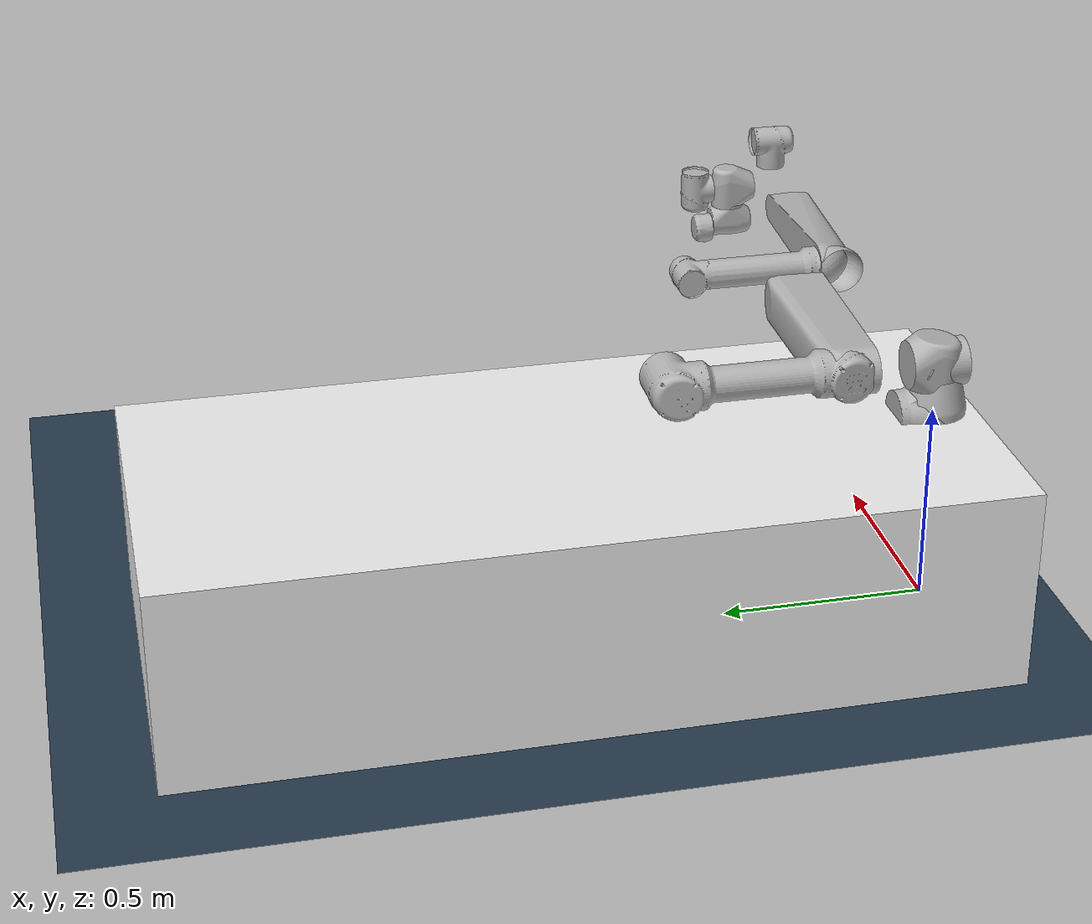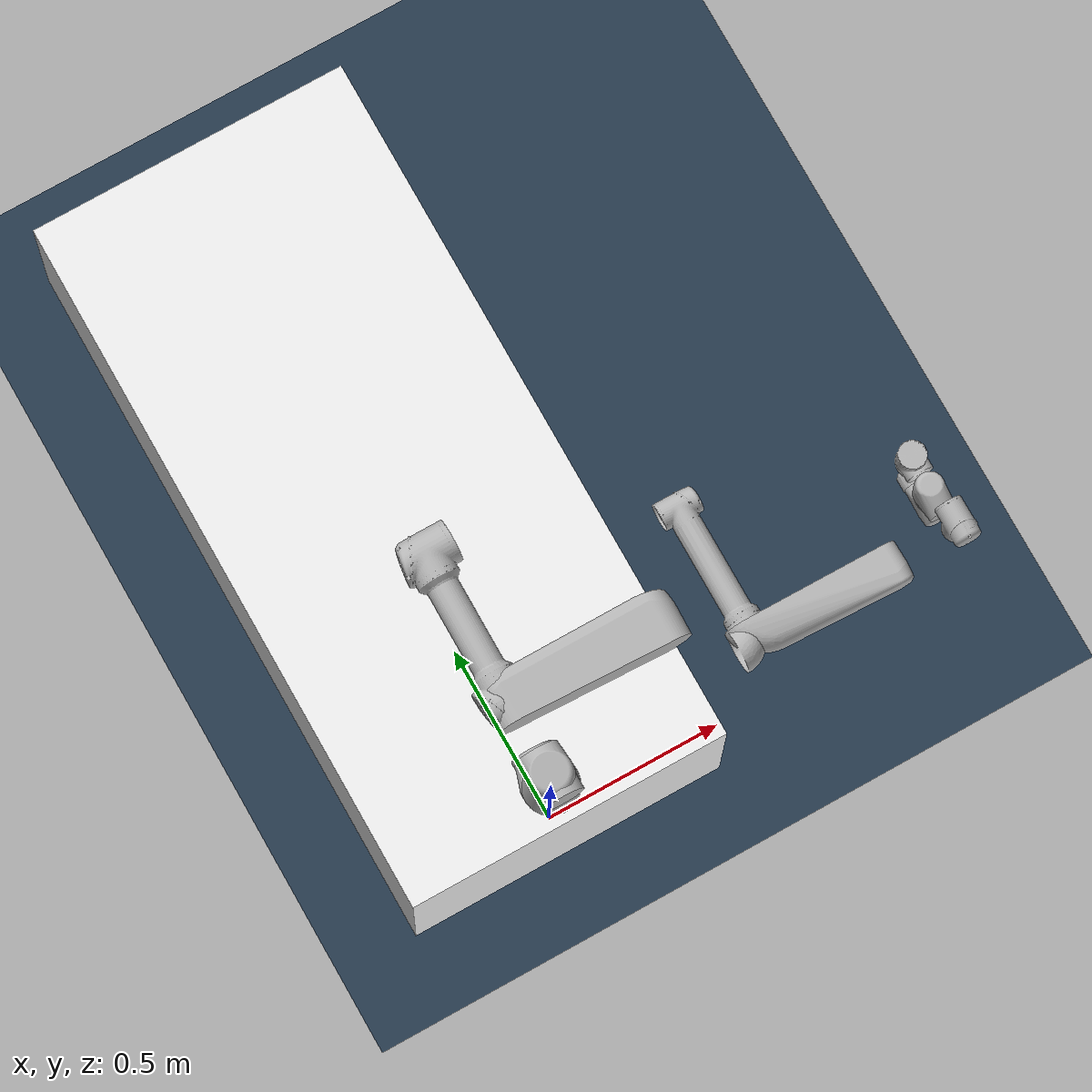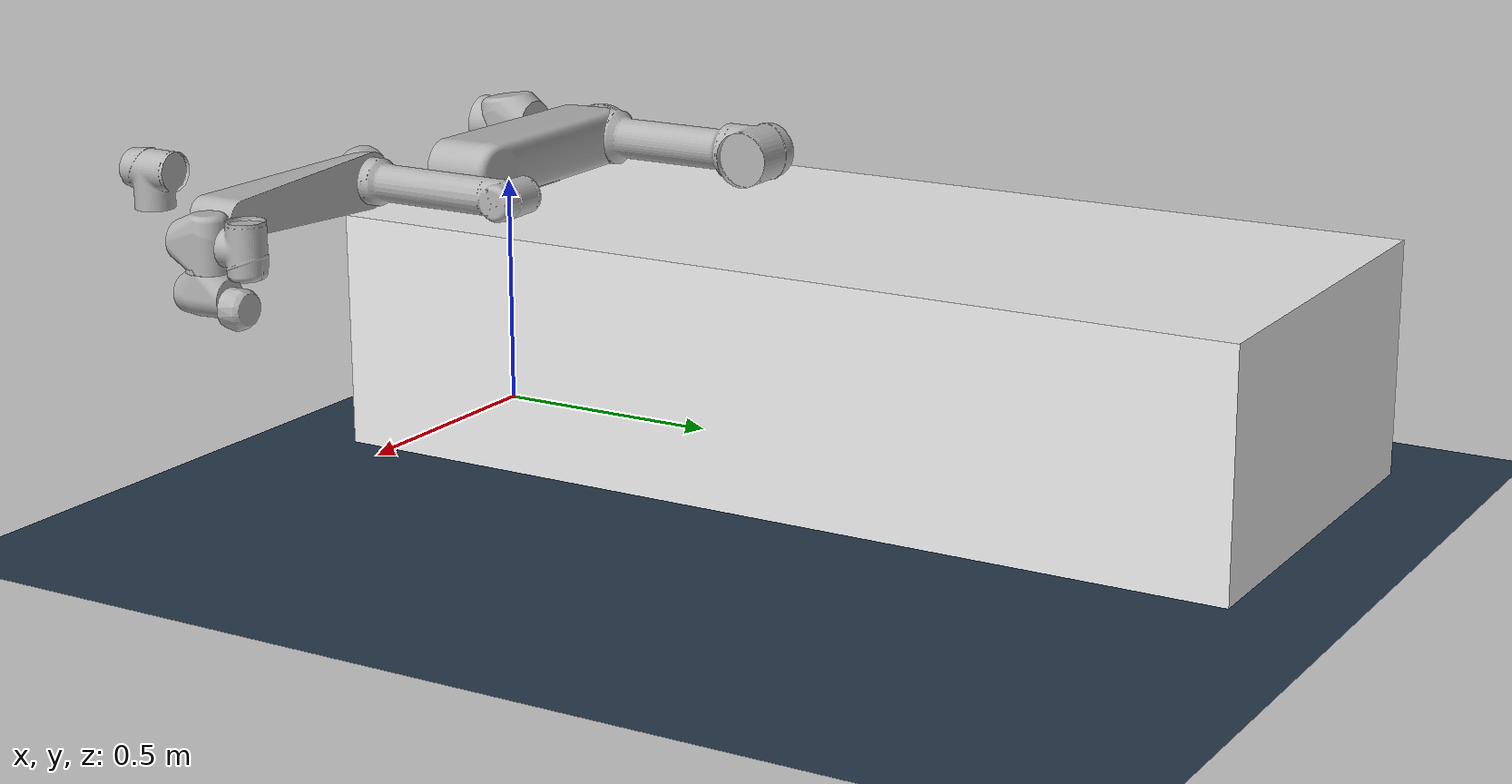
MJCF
<mujoco model="ur10">
    <compiler angle="radian" meshdir="meshes/" coordinate="local" inertiafromgeom='auto' texturedir="textures"/>
    <option timestep="0.01" apirate="200" iterations="20" noslip_iterations="20" tolerance="1e-10" impratio="10"
			gravity="0 0 -9.81" solver="PGS" cone="elliptic" />
    <size njmax="1500" nconmax="500" nstack="5000000" />
    <visual>
        <map fogstart="3" fogend="5" force="0.1" znear="0.1"/>
        <quality shadowsize="4096" offsamples="8" />
        <global offwidth="3024" offheight="1680"/>
    </visual>
    <asset>
        <texture builtin="checker" height="512" name="texplane" rgb1=".2 .3 .4" rgb2=".1 0.15 0.2" type="2d" width="512"/>
        <material name="floorplane" reflectance="0.3" texrepeat="1 1" texture="texplane" texuniform="true"/>
        <material name="table_mat" specular="0" shininess="0.5" reflectance="0" rgba="0.93 0.93 0.93 1"/>
    </asset>
    <asset>
        <mesh name="platform" file="platform.stl" />
        <mesh name="base" file="base.stl" />
        <mesh name="shoulder" file="shoulder.stl" />
        <mesh name="upperarm" file="upperarm.stl" />
        <mesh name="forearm" file="forearm.stl" />
        <mesh name="wrist1" file="wrist1.stl" />
        <mesh name="wrist2" file="wrist2.stl" />
        <mesh name="wrist3" file="wrist3.stl" />
        <mesh name="base_vis" file="base_vis.stl" />
        <mesh name="shoulder_vis" file="shoulder_vis.stl" />
        <mesh name="upperarm_vis" file="upperarm_vis.stl" />
        <mesh name="forearm_vis" file="forearm_vis.stl" />
        <mesh name="wrist1_vis" file="wrist1_vis.stl" />
        <mesh name="wrist2_vis" file="wrist2_vis.stl" />
        <mesh name="wrist3_vis" file="wrist3_vis.stl" />
    </asset>
    <default>
        <default class="ur10">
            <joint pos="0 0 0" axis="0 0 1" limited="true"/>
            <position forcelimited="true" ctrllimited="true"/>
            <default class="ur10_vis">
                <geom contype="0" conaffinity="0" group="1" type="mesh" rgba=".7 .7 .7 1" mass="0"/>
            </default>
            <default class="ur10_col">
                <geom contype="1" conaffinity="1" group="2" type="mesh" rgba=".7 .7 .7 1"/>
            </default>
        </default>
    </default>
    <worldbody>
        <geom name="floor" pos="0. 0. 0" size="3 3 .125" type="plane" condim="4" material="floorplane" contype="1" conaffinity="1"></geom>
		<light directional="true" diffuse='1.0 1.0 1.0' pos="0 0 3" dir="0 0 -1"/>
        <body name="table0" pos="0 0.9 0.25">
            <geom size="0.45 1 0.25" type="box" condim="3" name="table0" material="table_mat" mass="2000" friction="0.1 0.005 0.0001"/>
        </body>
        <body name="base" pos="0 0 0.5">
            <geom name="base" class="ur10_vis" type="mesh" contype="0" conaffinity="0" group="1" rgba="0.7 0.7 0.7 1" mesh="base_vis" />
            <geom class="ur10_col" mesh="base"/>
            <body name="shoulder_link" pos="0 0 0.1273">
                <inertial pos="0 0 0" mass="7.778" diaginertia="0.0314743 0.0314743 0.0218756" />
                <joint name="shoulder_pan_joint" pos="0 0 0" axis="0 0 1" limited="true" range="-6.28319 6.28319" damping="300"/>
                <geom name="shoulder" type="mesh" contype="0" conaffinity="0" group="1" rgba="0.7 0.7 0.7 1" mesh="shoulder_vis" />
                <geom class="ur10_col" mesh="shoulder"/>
                <body name="upper_arm_link" pos="0 0.220941 0" quat="0.707107 0 0.707107 0" euler="0 0 0">
                    <inertial pos="0 -0.045 0.306" mass="12.93" diaginertia="0.421754 0.421754 0.0363656" />
                    <joint name="shoulder_lift_joint" pos="0 0 0" axis="0 1 0" limited="true" range="-6.28319 6.28319" damping="300"/>
                    <geom name="upperarm" type="mesh" contype="0" conaffinity="0" group="1" rgba="0.7 0.7 0.7 1" mesh="upperarm_vis" />
                    <geom class="ur10_col" mesh="upperarm"/>
                    <body name="forearm_link" pos="0 -0.1719 0.612">
                        <inertial pos="0 0 0.28615" mass="3.87" diaginertia="0.11107 0.11107 0.0108844" />
                        <joint name="elbow_joint" pos="0 0 0" axis="0 1 0" limited="true" range="-3.14159 3.14159" damping="300"/>
                        <geom name="forearm" type="mesh" contype="0" conaffinity="0" group="1" rgba="0.7 0.7 0.7 1" mesh="forearm_vis" />
                        <geom class="ur10_col" mesh="forearm"/>
                        <body name="wrist_1_link" pos="0 0 0.5723" quat="0.707107 0 0.707107 0" euler="0 0 0">
                            <inertial pos="0 0.1149 0" quat="0.5 0.5 -0.5 0.5" mass="1.96" diaginertia="0.0055125 0.00510825 0.00510825" />
                            <joint name="wrist_1_joint" pos="0 0 0" axis="0 1 0" limited="true" range="-6.28319 6.28319" damping="20"/>
                            <geom name="wrist1" type="mesh" contype="0" conaffinity="0" group="1" rgba="0.7 0.7 0.7 1" mesh="wrist1_vis" />
                            <geom class="ur10_col" mesh="wrist1"/>
                            <body name="wrist_2_link" pos="0 0.1149 0">
                                <inertial pos="0 0 0.1157" quat="0.5 0.5 -0.5 0.5" mass="1.96" diaginertia="0.0055125 0.00510825 0.00510825" />
                                <joint name="wrist_2_joint" pos="0 0 0" axis="0 0 1" limited="true" range="-6.28319 6.28319" damping="20"/>
                                <geom name="wrist2" type="mesh" contype="0" conaffinity="0" group="1" rgba="0.7 0.7 0.7 1" mesh="wrist2_vis" />
                                <geom class="ur10_col" mesh="wrist2"/>
                                <body name="wrist_3_link" pos="0 0 0.1157">
                                    <inertial pos="0 0.0769759 0" quat="0.707107 0 0 0.707107" mass="0.203" diaginertia="0.000204542 0.000117966 0.000117966" />
                                    <joint name="wrist_3_joint" pos="0 0 0" axis="0 1 0" limited="true" range="-6.28319 6.28319" damping="20"/>
                                    <geom name="wrist3" type="mesh" contype="0" conaffinity="0" group="1" rgba="0.7 0.7 0.7 1" mesh="wrist3_vis" />
                                    <geom class="ur10_col" mesh="wrist3"/>
                                    <geom size="0.005 0.005 0.005" pos="0 0.0822 0" quat="0.707107 0 0 0.707107" type="box" />
                                </body>
                            </body>
                        </body>
                    </body>
                </body>
            </body>
        </body>
    </worldbody>

    <actuator>
        <position name="shoulder_pan_joint" class="ur10" ctrlrange="-6.28319 6.28319" forcerange="-330 330" joint="shoulder_pan_joint" kp="1000"/>
        <position name="shoulder_lift_joint" class="ur10" ctrlrange="-6.28319 6.28319" forcerange="-330 330" joint="shoulder_lift_joint" kp="3000"/>
        <position name="elbow_joint" class="ur10" ctrlrange="-3.14159 3.14159" forcerange="-150 150" joint="elbow_joint" kp="1000"/>
        <position name="wrist_1_joint" class="ur10" ctrlrange="-6.28319 6.28319" forcerange="-56 56" joint="wrist_1_joint" kp="100"/>
        <position name="wrist_2_joint" class="ur10" ctrlrange="-6.28319 6.28319" forcerange="-56 56" joint="wrist_2_joint" kp="100"/>
        <position name="wrist_3_joint" class="ur10" ctrlrange="-6.28319 6.28319" forcerange="-56 56" joint="wrist_3_joint" kp="100"/>
    </actuator>
</mujoco>
